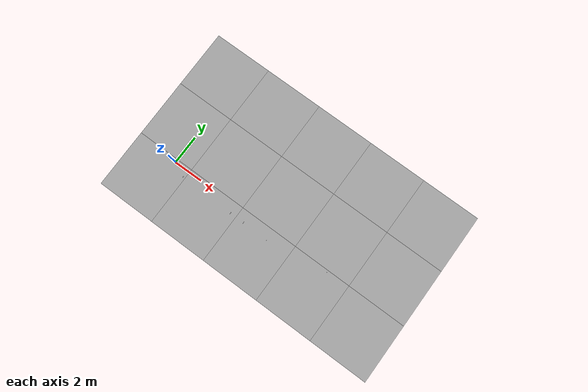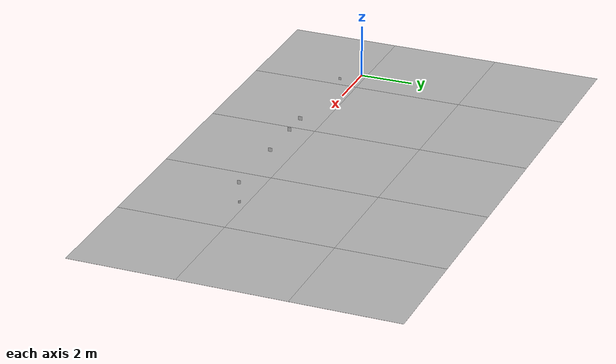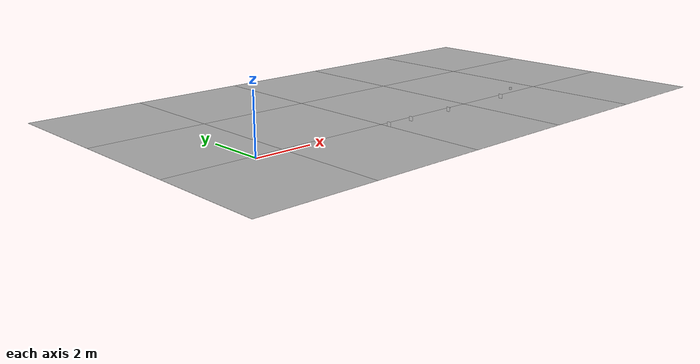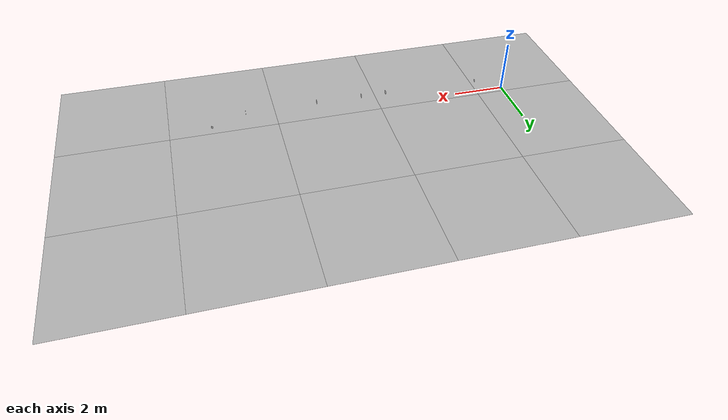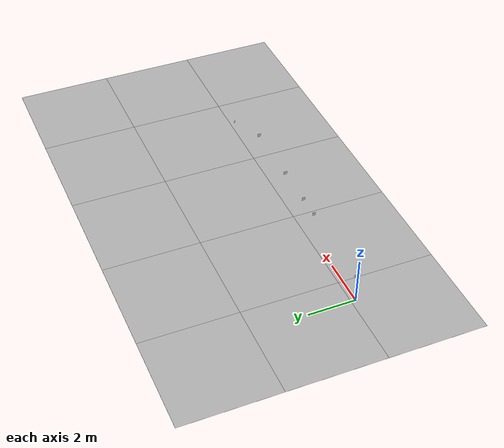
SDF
<sdf version='1.6'><world name='default'>
    <light name='sun_light' type='directional'>
      <pose frame=''>0 0 10 0 -0 0</pose>
      <diffuse>0.5 0.5 0.5 1</diffuse>
      <specular>0.1 0.1 0.1 1</specular>
      <direction>0.1 0.1 -0.9</direction>
      <attenuation>
        <range>20</range>
        <constant>0.5</constant>
        <linear>0.01</linear>
        <quadratic>0.001</quadratic>
      </attenuation>
      <cast_shadows>1</cast_shadows>
    </light>

    <model name='Tile/0-0'>
      <static>1</static>
      <link name='link'>
        <collision name='collision'>
          <geometry>
            <plane>
              <normal>0 0 1</normal>
              <size>4.096 4.096</size>
            </plane>
          </geometry>
          <surface>
            <friction>
              <ode>
                <mu>100</mu>
                <mu2>50</mu2>
              </ode>
              <torsional>
                <ode/>
              </torsional>
            </friction>
            <contact>
              <ode/>
            </contact>
            <bounce/>
          </surface>
          <max_contacts>10</max_contacts>
        </collision>
        <visual name='visual'>
          <cast_shadows>0</cast_shadows>
          <geometry>
            <plane>
              <normal>0 0 1</normal>
              <size>4.096 4.096</size>
            </plane>
          </geometry>
          <material>
            <script>
              <uri>file://materials/scripts</uri>
              <uri>file://materials/textures</uri>
              <name>Tile/59aa48be58bd1d39c4f8729740ab94a3ee72491696f29f5efb5f4e6bfd79c256</name>
            </script>
          </material>
        </visual>
        <self_collide>0</self_collide>
        <enable_wind>0</enable_wind>
        <kinematic>0</kinematic>
      </link>
      <pose frame=''>-0.952 -1.8519999999999999 0 0 -0 0</pose>
    </model>

    <model name='Tile/0-1'>
      <static>1</static>
      <link name='link'>
        <collision name='collision'>
          <geometry>
            <plane>
              <normal>0 0 1</normal>
              <size>4.096 4.096</size>
            </plane>
          </geometry>
          <surface>
            <friction>
              <ode>
                <mu>100</mu>
                <mu2>50</mu2>
              </ode>
              <torsional>
                <ode/>
              </torsional>
            </friction>
            <contact>
              <ode/>
            </contact>
            <bounce/>
          </surface>
          <max_contacts>10</max_contacts>
        </collision>
        <visual name='visual'>
          <cast_shadows>0</cast_shadows>
          <geometry>
            <plane>
              <normal>0 0 1</normal>
              <size>4.096 4.096</size>
            </plane>
          </geometry>
          <material>
            <script>
              <uri>file://materials/scripts</uri>
              <uri>file://materials/textures</uri>
              <name>Tile/cb742ec834ce0db14fa5edbd5a9bf9a3149f1d3629eb5aba388d11a938615e9e</name>
            </script>
          </material>
        </visual>
        <self_collide>0</self_collide>
        <enable_wind>0</enable_wind>
        <kinematic>0</kinematic>
      </link>
      <pose frame=''>-0.952 2.244 0 0 -0 0</pose>
    </model>

    <model name='Tile/0-2'>
      <static>1</static>
      <link name='link'>
        <collision name='collision'>
          <geometry>
            <plane>
              <normal>0 0 1</normal>
              <size>4.096 4.096</size>
            </plane>
          </geometry>
          <surface>
            <friction>
              <ode>
                <mu>100</mu>
                <mu2>50</mu2>
              </ode>
              <torsional>
                <ode/>
              </torsional>
            </friction>
            <contact>
              <ode/>
            </contact>
            <bounce/>
          </surface>
          <max_contacts>10</max_contacts>
        </collision>
        <visual name='visual'>
          <cast_shadows>0</cast_shadows>
          <geometry>
            <plane>
              <normal>0 0 1</normal>
              <size>4.096 4.096</size>
            </plane>
          </geometry>
          <material>
            <script>
              <uri>file://materials/scripts</uri>
              <uri>file://materials/textures</uri>
              <name>Tile/5eab350b8220ac9944dbdfa4ac3288c7c17e24c3bf5df0dfcf6173d64dae00a1</name>
            </script>
          </material>
        </visual>
        <self_collide>0</self_collide>
        <enable_wind>0</enable_wind>
        <kinematic>0</kinematic>
      </link>
      <pose frame=''>-0.952 6.34 0 0 -0 0</pose>
    </model>

    <model name='Tile/1-0'>
      <static>1</static>
      <link name='link'>
        <collision name='collision'>
          <geometry>
            <plane>
              <normal>0 0 1</normal>
              <size>4.096 4.096</size>
            </plane>
          </geometry>
          <surface>
            <friction>
              <ode>
                <mu>100</mu>
                <mu2>50</mu2>
              </ode>
              <torsional>
                <ode/>
              </torsional>
            </friction>
            <contact>
              <ode/>
            </contact>
            <bounce/>
          </surface>
          <max_contacts>10</max_contacts>
        </collision>
        <visual name='visual'>
          <cast_shadows>0</cast_shadows>
          <geometry>
            <plane>
              <normal>0 0 1</normal>
              <size>4.096 4.096</size>
            </plane>
          </geometry>
          <material>
            <script>
              <uri>file://materials/scripts</uri>
              <uri>file://materials/textures</uri>
              <name>Tile/88aa6c1ba2e389c2eef8b7d4c609f415ca4acb4c18d747929491a22a0553b7c5</name>
            </script>
          </material>
        </visual>
        <self_collide>0</self_collide>
        <enable_wind>0</enable_wind>
        <kinematic>0</kinematic>
      </link>
      <pose frame=''>3.144 -1.8519999999999999 0 0 -0 0</pose>
    </model>

    <model name='Tile/1-1'>
      <static>1</static>
      <link name='link'>
        <collision name='collision'>
          <geometry>
            <plane>
              <normal>0 0 1</normal>
              <size>4.096 4.096</size>
            </plane>
          </geometry>
          <surface>
            <friction>
              <ode>
                <mu>100</mu>
                <mu2>50</mu2>
              </ode>
              <torsional>
                <ode/>
              </torsional>
            </friction>
            <contact>
              <ode/>
            </contact>
            <bounce/>
          </surface>
          <max_contacts>10</max_contacts>
        </collision>
        <visual name='visual'>
          <cast_shadows>0</cast_shadows>
          <geometry>
            <plane>
              <normal>0 0 1</normal>
              <size>4.096 4.096</size>
            </plane>
          </geometry>
          <material>
            <script>
              <uri>file://materials/scripts</uri>
              <uri>file://materials/textures</uri>
              <name>Tile/5ddd2a6cf5edb8f996345af7b87e090f548fe0b630b4632dd3ba9ed6e4d9b0d3</name>
            </script>
          </material>
        </visual>
        <self_collide>0</self_collide>
        <enable_wind>0</enable_wind>
        <kinematic>0</kinematic>
      </link>
      <pose frame=''>3.144 2.244 0 0 -0 0</pose>
    </model>

    <model name='Tile/1-2'>
      <static>1</static>
      <link name='link'>
        <collision name='collision'>
          <geometry>
            <plane>
              <normal>0 0 1</normal>
              <size>4.096 4.096</size>
            </plane>
          </geometry>
          <surface>
            <friction>
              <ode>
                <mu>100</mu>
                <mu2>50</mu2>
              </ode>
              <torsional>
                <ode/>
              </torsional>
            </friction>
            <contact>
              <ode/>
            </contact>
            <bounce/>
          </surface>
          <max_contacts>10</max_contacts>
        </collision>
        <visual name='visual'>
          <cast_shadows>0</cast_shadows>
          <geometry>
            <plane>
              <normal>0 0 1</normal>
              <size>4.096 4.096</size>
            </plane>
          </geometry>
          <material>
            <script>
              <uri>file://materials/scripts</uri>
              <uri>file://materials/textures</uri>
              <name>Tile/5eab350b8220ac9944dbdfa4ac3288c7c17e24c3bf5df0dfcf6173d64dae00a1</name>
            </script>
          </material>
        </visual>
        <self_collide>0</self_collide>
        <enable_wind>0</enable_wind>
        <kinematic>0</kinematic>
      </link>
      <pose frame=''>3.144 6.34 0 0 -0 0</pose>
    </model>

    <model name='Tile/2-0'>
      <static>1</static>
      <link name='link'>
        <collision name='collision'>
          <geometry>
            <plane>
              <normal>0 0 1</normal>
              <size>4.096 4.096</size>
            </plane>
          </geometry>
          <surface>
            <friction>
              <ode>
                <mu>100</mu>
                <mu2>50</mu2>
              </ode>
              <torsional>
                <ode/>
              </torsional>
            </friction>
            <contact>
              <ode/>
            </contact>
            <bounce/>
          </surface>
          <max_contacts>10</max_contacts>
        </collision>
        <visual name='visual'>
          <cast_shadows>0</cast_shadows>
          <geometry>
            <plane>
              <normal>0 0 1</normal>
              <size>4.096 4.096</size>
            </plane>
          </geometry>
          <material>
            <script>
              <uri>file://materials/scripts</uri>
              <uri>file://materials/textures</uri>
              <name>Tile/817c0635c57801e361a9a88042bbbfca31577ed4232e25e1a0322f624ac8c2d2</name>
            </script>
          </material>
        </visual>
        <self_collide>0</self_collide>
        <enable_wind>0</enable_wind>
        <kinematic>0</kinematic>
      </link>
      <pose frame=''>7.24 -1.8519999999999999 0 0 -0 0</pose>
    </model>

    <model name='Tile/2-1'>
      <static>1</static>
      <link name='link'>
        <collision name='collision'>
          <geometry>
            <plane>
              <normal>0 0 1</normal>
              <size>4.096 4.096</size>
            </plane>
          </geometry>
          <surface>
            <friction>
              <ode>
                <mu>100</mu>
                <mu2>50</mu2>
              </ode>
              <torsional>
                <ode/>
              </torsional>
            </friction>
            <contact>
              <ode/>
            </contact>
            <bounce/>
          </surface>
          <max_contacts>10</max_contacts>
        </collision>
        <visual name='visual'>
          <cast_shadows>0</cast_shadows>
          <geometry>
            <plane>
              <normal>0 0 1</normal>
              <size>4.096 4.096</size>
            </plane>
          </geometry>
          <material>
            <script>
              <uri>file://materials/scripts</uri>
              <uri>file://materials/textures</uri>
              <name>Tile/254512051cdf48df258b55ed9cb410bbd8c484528ab28df52f6406597092a2d5</name>
            </script>
          </material>
        </visual>
        <self_collide>0</self_collide>
        <enable_wind>0</enable_wind>
        <kinematic>0</kinematic>
      </link>
      <pose frame=''>7.24 2.244 0 0 -0 0</pose>
    </model>

    <model name='Tile/2-2'>
      <static>1</static>
      <link name='link'>
        <collision name='collision'>
          <geometry>
            <plane>
              <normal>0 0 1</normal>
              <size>4.096 4.096</size>
            </plane>
          </geometry>
          <surface>
            <friction>
              <ode>
                <mu>100</mu>
                <mu2>50</mu2>
              </ode>
              <torsional>
                <ode/>
              </torsional>
            </friction>
            <contact>
              <ode/>
            </contact>
            <bounce/>
          </surface>
          <max_contacts>10</max_contacts>
        </collision>
        <visual name='visual'>
          <cast_shadows>0</cast_shadows>
          <geometry>
            <plane>
              <normal>0 0 1</normal>
              <size>4.096 4.096</size>
            </plane>
          </geometry>
          <material>
            <script>
              <uri>file://materials/scripts</uri>
              <uri>file://materials/textures</uri>
              <name>Tile/5eab350b8220ac9944dbdfa4ac3288c7c17e24c3bf5df0dfcf6173d64dae00a1</name>
            </script>
          </material>
        </visual>
        <self_collide>0</self_collide>
        <enable_wind>0</enable_wind>
        <kinematic>0</kinematic>
      </link>
      <pose frame=''>7.24 6.34 0 0 -0 0</pose>
    </model>

    <model name='Tile/3-0'>
      <static>1</static>
      <link name='link'>
        <collision name='collision'>
          <geometry>
            <plane>
              <normal>0 0 1</normal>
              <size>4.096 4.096</size>
            </plane>
          </geometry>
          <surface>
            <friction>
              <ode>
                <mu>100</mu>
                <mu2>50</mu2>
              </ode>
              <torsional>
                <ode/>
              </torsional>
            </friction>
            <contact>
              <ode/>
            </contact>
            <bounce/>
          </surface>
          <max_contacts>10</max_contacts>
        </collision>
        <visual name='visual'>
          <cast_shadows>0</cast_shadows>
          <geometry>
            <plane>
              <normal>0 0 1</normal>
              <size>4.096 4.096</size>
            </plane>
          </geometry>
          <material>
            <script>
              <uri>file://materials/scripts</uri>
              <uri>file://materials/textures</uri>
              <name>Tile/5fb632f7a99aa4a694e7f7c23323e96410fc81420ef0030e6f0248b9b09870ed</name>
            </script>
          </material>
        </visual>
        <self_collide>0</self_collide>
        <enable_wind>0</enable_wind>
        <kinematic>0</kinematic>
      </link>
      <pose frame=''>11.336 -1.8519999999999999 0 0 -0 0</pose>
    </model>

    <model name='Tile/3-1'>
      <static>1</static>
      <link name='link'>
        <collision name='collision'>
          <geometry>
            <plane>
              <normal>0 0 1</normal>
              <size>4.096 4.096</size>
            </plane>
          </geometry>
          <surface>
            <friction>
              <ode>
                <mu>100</mu>
                <mu2>50</mu2>
              </ode>
              <torsional>
                <ode/>
              </torsional>
            </friction>
            <contact>
              <ode/>
            </contact>
            <bounce/>
          </surface>
          <max_contacts>10</max_contacts>
        </collision>
        <visual name='visual'>
          <cast_shadows>0</cast_shadows>
          <geometry>
            <plane>
              <normal>0 0 1</normal>
              <size>4.096 4.096</size>
            </plane>
          </geometry>
          <material>
            <script>
              <uri>file://materials/scripts</uri>
              <uri>file://materials/textures</uri>
              <name>Tile/da4fdfb49b24522633da4a6904e5bb507ba70ad9c1add42a0574d668d96a8323</name>
            </script>
          </material>
        </visual>
        <self_collide>0</self_collide>
        <enable_wind>0</enable_wind>
        <kinematic>0</kinematic>
      </link>
      <pose frame=''>11.336 2.244 0 0 -0 0</pose>
    </model>

    <model name='Tile/3-2'>
      <static>1</static>
      <link name='link'>
        <collision name='collision'>
          <geometry>
            <plane>
              <normal>0 0 1</normal>
              <size>4.096 4.096</size>
            </plane>
          </geometry>
          <surface>
            <friction>
              <ode>
                <mu>100</mu>
                <mu2>50</mu2>
              </ode>
              <torsional>
                <ode/>
              </torsional>
            </friction>
            <contact>
              <ode/>
            </contact>
            <bounce/>
          </surface>
          <max_contacts>10</max_contacts>
        </collision>
        <visual name='visual'>
          <cast_shadows>0</cast_shadows>
          <geometry>
            <plane>
              <normal>0 0 1</normal>
              <size>4.096 4.096</size>
            </plane>
          </geometry>
          <material>
            <script>
              <uri>file://materials/scripts</uri>
              <uri>file://materials/textures</uri>
              <name>Tile/5eab350b8220ac9944dbdfa4ac3288c7c17e24c3bf5df0dfcf6173d64dae00a1</name>
            </script>
          </material>
        </visual>
        <self_collide>0</self_collide>
        <enable_wind>0</enable_wind>
        <kinematic>0</kinematic>
      </link>
      <pose frame=''>11.336 6.34 0 0 -0 0</pose>
    </model>

    <model name='Tile/4-0'>
      <static>1</static>
      <link name='link'>
        <collision name='collision'>
          <geometry>
            <plane>
              <normal>0 0 1</normal>
              <size>4.096 4.096</size>
            </plane>
          </geometry>
          <surface>
            <friction>
              <ode>
                <mu>100</mu>
                <mu2>50</mu2>
              </ode>
              <torsional>
                <ode/>
              </torsional>
            </friction>
            <contact>
              <ode/>
            </contact>
            <bounce/>
          </surface>
          <max_contacts>10</max_contacts>
        </collision>
        <visual name='visual'>
          <cast_shadows>0</cast_shadows>
          <geometry>
            <plane>
              <normal>0 0 1</normal>
              <size>4.096 4.096</size>
            </plane>
          </geometry>
          <material>
            <script>
              <uri>file://materials/scripts</uri>
              <uri>file://materials/textures</uri>
              <name>Tile/5eab350b8220ac9944dbdfa4ac3288c7c17e24c3bf5df0dfcf6173d64dae00a1</name>
            </script>
          </material>
        </visual>
        <self_collide>0</self_collide>
        <enable_wind>0</enable_wind>
        <kinematic>0</kinematic>
      </link>
      <pose frame=''>15.431999999999999 -1.8519999999999999 0 0 -0 0</pose>
    </model>

    <model name='Tile/4-1'>
      <static>1</static>
      <link name='link'>
        <collision name='collision'>
          <geometry>
            <plane>
              <normal>0 0 1</normal>
              <size>4.096 4.096</size>
            </plane>
          </geometry>
          <surface>
            <friction>
              <ode>
                <mu>100</mu>
                <mu2>50</mu2>
              </ode>
              <torsional>
                <ode/>
              </torsional>
            </friction>
            <contact>
              <ode/>
            </contact>
            <bounce/>
          </surface>
          <max_contacts>10</max_contacts>
        </collision>
        <visual name='visual'>
          <cast_shadows>0</cast_shadows>
          <geometry>
            <plane>
              <normal>0 0 1</normal>
              <size>4.096 4.096</size>
            </plane>
          </geometry>
          <material>
            <script>
              <uri>file://materials/scripts</uri>
              <uri>file://materials/textures</uri>
              <name>Tile/70466a3db84d0b0a87b1c3b0c6f6ca82b2b157194bc8ecf919e1f81775963c79</name>
            </script>
          </material>
        </visual>
        <self_collide>0</self_collide>
        <enable_wind>0</enable_wind>
        <kinematic>0</kinematic>
      </link>
      <pose frame=''>15.431999999999999 2.244 0 0 -0 0</pose>
    </model>

    <model name='Tile/4-2'>
      <static>1</static>
      <link name='link'>
        <collision name='collision'>
          <geometry>
            <plane>
              <normal>0 0 1</normal>
              <size>4.096 4.096</size>
            </plane>
          </geometry>
          <surface>
            <friction>
              <ode>
                <mu>100</mu>
                <mu2>50</mu2>
              </ode>
              <torsional>
                <ode/>
              </torsional>
            </friction>
            <contact>
              <ode/>
            </contact>
            <bounce/>
          </surface>
          <max_contacts>10</max_contacts>
        </collision>
        <visual name='visual'>
          <cast_shadows>0</cast_shadows>
          <geometry>
            <plane>
              <normal>0 0 1</normal>
              <size>4.096 4.096</size>
            </plane>
          </geometry>
          <material>
            <script>
              <uri>file://materials/scripts</uri>
              <uri>file://materials/textures</uri>
              <name>Tile/5eab350b8220ac9944dbdfa4ac3288c7c17e24c3bf5df0dfcf6173d64dae00a1</name>
            </script>
          </material>
        </visual>
        <self_collide>0</self_collide>
        <enable_wind>0</enable_wind>
        <kinematic>0</kinematic>
      </link>
      <pose frame=''>15.431999999999999 6.34 0 0 -0 0</pose>
    </model>

    <model name='Sign/-13'>
      <static>1</static>
      <link name='link'>
        <visual name='visual'>
          <cast_shadows>0</cast_shadows>
          <geometry>
            <plane>
              <normal>0 0 1</normal>
              <size>0.1 0.1</size>
            </plane>
          </geometry>
          <material>
            <script>
              <uri>file://materials/scripts</uri>
              <uri>file://materials/textures</uri>
              <name>Sign/stvo-306</name>
            </script>
          </material>
        </visual>
        <self_collide>0</self_collide>
        <enable_wind>0</enable_wind>
        <kinematic>0</kinematic>
      </link>
      <pose frame=''>0.9999999999999999 -0.49999999999999994 0.2 1.5707963267948966 0 4.71238898038469</pose>
    </model>

    <model name='Sign/-18'>
      <static>1</static>
      <link name='link'>
        <visual name='visual'>
          <cast_shadows>0</cast_shadows>
          <geometry>
            <plane>
              <normal>0 0 1</normal>
              <size>0.15 0.15</size>
            </plane>
          </geometry>
          <material>
            <script>
              <uri>file://materials/scripts</uri>
              <uri>file://materials/textures</uri>
              <name>Sign/stvo-274.1</name>
            </script>
          </material>
        </visual>
        <self_collide>0</self_collide>
        <enable_wind>0</enable_wind>
        <kinematic>0</kinematic>
      </link>
      <pose frame=''>4.805 -0.5499999999999999 0.22499999999999998 1.5707963267948966 0 4.71238898038469</pose>
    </model>

    <model name='Sign/-23'>
      <static>1</static>
      <link name='link'>
        <visual name='visual'>
          <cast_shadows>0</cast_shadows>
          <geometry>
            <plane>
              <normal>0 0 1</normal>
              <size>0.15 0.15</size>
            </plane>
          </geometry>
          <material>
            <script>
              <uri>file://materials/scripts</uri>
              <uri>file://materials/textures</uri>
              <name>Sign/stvo-350-10</name>
            </script>
          </material>
        </visual>
        <self_collide>0</self_collide>
        <enable_wind>0</enable_wind>
        <kinematic>0</kinematic>
      </link>
      <pose frame=''>5.8149999999999995 -0.5499999999999999 0.22499999999999998 1.5707963267948966 0 4.71238898038469</pose>
    </model>

    <model name='Sign/-33'>
      <static>1</static>
      <link name='link'>
        <visual name='visual'>
          <cast_shadows>0</cast_shadows>
          <geometry>
            <plane>
              <normal>0 0 1</normal>
              <size>0.15 0.15</size>
            </plane>
          </geometry>
          <material>
            <script>
              <uri>file://materials/scripts</uri>
              <uri>file://materials/textures</uri>
              <name>Sign/stvo-350-10</name>
            </script>
          </material>
        </visual>
        <self_collide>0</self_collide>
        <enable_wind>0</enable_wind>
        <kinematic>0</kinematic>
      </link>
      <pose frame=''>7.625 -0.5499999999999999 0.22499999999999998 1.5707963267948966 0 4.71238898038469</pose>
    </model>

    <model name='Sign/-45'>
      <static>1</static>
      <link name='link'>
        <visual name='visual'>
          <cast_shadows>0</cast_shadows>
          <geometry>
            <plane>
              <normal>0 0 1</normal>
              <size>0.15 0.15</size>
            </plane>
          </geometry>
          <material>
            <script>
              <uri>file://materials/scripts</uri>
              <uri>file://materials/textures</uri>
              <name>Sign/stvo-274.2</name>
            </script>
          </material>
        </visual>
        <self_collide>0</self_collide>
        <enable_wind>0</enable_wind>
        <kinematic>0</kinematic>
      </link>
      <pose frame=''>10.435 -0.5499999999999999 0.22499999999999998 1.5707963267948966 0 4.71238898038469</pose>
    </model>

    <model name='Sign/-58'>
      <static>1</static>
      <link name='link'>
        <visual name='visual'>
          <cast_shadows>0</cast_shadows>
          <geometry>
            <plane>
              <normal>0 0 1</normal>
              <size>0.1 0.1</size>
            </plane>
          </geometry>
          <material>
            <script>
              <uri>file://materials/scripts</uri>
              <uri>file://materials/textures</uri>
              <name>Sign/stvo-306</name>
            </script>
          </material>
        </visual>
        <self_collide>0</self_collide>
        <enable_wind>0</enable_wind>
        <kinematic>0</kinematic>
      </link>
      <pose frame=''>11.78350288425444 0.05649711574555982 0.2 1.5707963267948966 0 5.497787143782138</pose>
    </model>
    </world></sdf>
